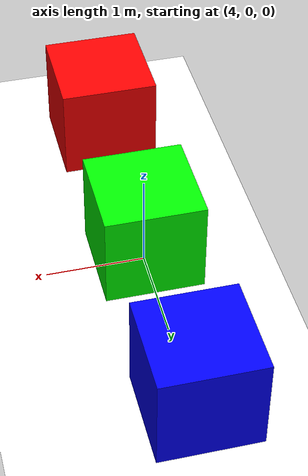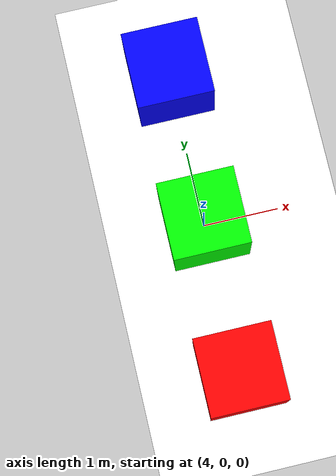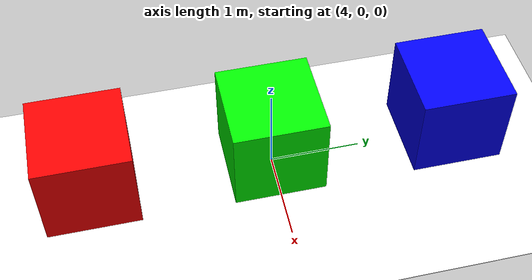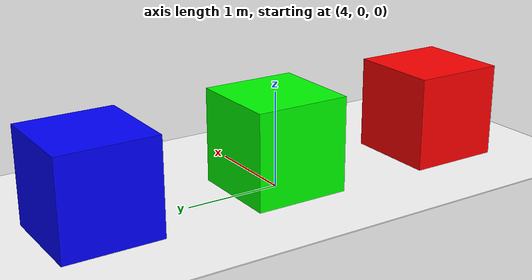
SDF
<?xml version="1.0" ?>
<sdf version="1.6">
  <world name="empty_world">
    <gravity>0 0 -9.8</gravity>

    <!-- ✅ 바닥 추가 -->
    <model name="custom_ground">
      <static>true</static>
      <link name="ground_link">
        <pose>0 0 0 0 0 0</pose>
        <collision name="collision">
          <geometry>
            <box>
              <size>50 50 0.01</size>
            </box>
          </geometry>
        </collision>
        <visual name="visual">
          <geometry>
            <box>
              <size>50 50 0.01</size>
            </box>
          </geometry>
          <material>
            <ambient>1 1 1 1</ambient>   <!-- ✅ 흰색 -->
            <diffuse>1 1 1 1</diffuse>
          </material>
        </visual>
      </link>
    </model>

    <scene>
      <ambient>0.4 0.4 0.4 1</ambient>
      <background>0.7 0.7 0.7 1</background>
    </scene>

    <!-- Red Box -->
    <model name="red_box">
      <pose>4 -2 0.5 0 0 0</pose>
      <static>true</static>
      <link name="link">
        <visual name="visual">
          <geometry>
            <box>
              <size>1 1 1</size>
            </box>
          </geometry>
          <material>
            <ambient>1 0 0 1</ambient>
            <diffuse>1 0 0 1</diffuse>
          </material>
        </visual>
        <collision name="collision">
          <geometry>
            <box>
              <size>1 1 1</size>
            </box>
          </geometry>
        </collision>
      </link>
    </model>

    <!-- Green Box -->
    <model name="green_box">
      <pose>4 0 0.5 0 0 0</pose>
      <static>true</static>
      <link name="link">
        <visual name="visual">
          <geometry>
            <box>
              <size>1 1 1</size>
            </box>
          </geometry>
          <material>
            <ambient>0 1 0 1</ambient>
            <diffuse>0 1 0 1</diffuse>
          </material>
        </visual>
        <collision name="collision">
          <geometry>
            <box>
              <size>1 1 1</size>
            </box>
          </geometry>
        </collision>
      </link>
    </model>

    <!-- Blue Box -->
    <model name="blue_box">
      <pose>4 2 0.5 0 0 0</pose>
      <static>true</static>
      <link name="link">
        <visual name="visual">
          <geometry>
            <box>
              <size>1 1 1</size>
            </box>
          </geometry>
          <material>
            <ambient>0 0 1 1</ambient>
            <diffuse>0 0 1 1</diffuse>
          </material>
        </visual>
        <collision name="collision">
          <geometry>
            <box>
              <size>1 1 1</size>
            </box>
          </geometry>
        </collision>
      </link>
    </model>

  </world>
</sdf>
